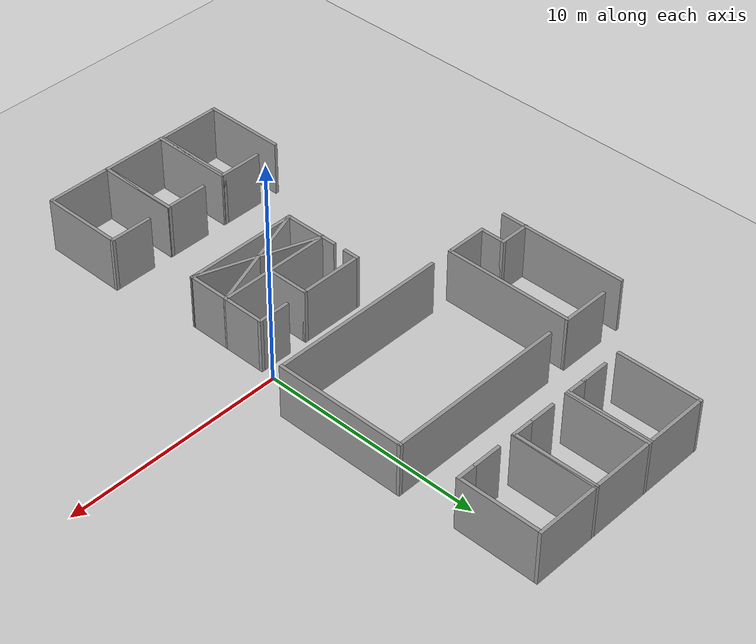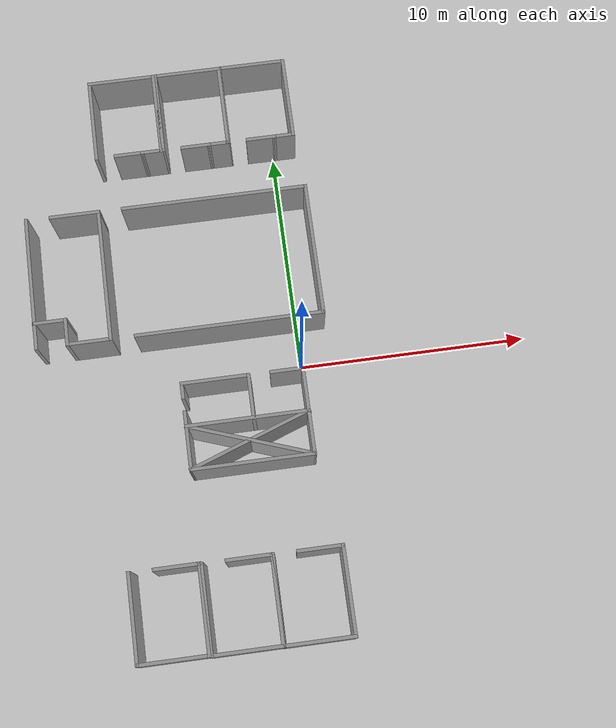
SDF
<sdf version="1.6">
 <world name="default">
  <model name="ground_plane">
   <static>1</static>
   <link name="link">
    <collision name="collision">
     <geometry><plane><normal>0 0 1</normal><size>100 100</size></plane></geometry>
     <surface><friction><ode><mu>100</mu><mu2>50</mu2></ode></friction></surface>
    </collision>
    <visual name="visual">
     <cast_shadows>0</cast_shadows>
     <geometry><plane><normal>0 0 1</normal><size>100 100</size></plane></geometry>
     <material>
      <script><uri>file://media/materials/scripts/gazebo.material</uri><name>Gazebo/Grey</name></script>
     </material>
    </visual>
   </link>
  </model>
  <model name="313-325_9">
   <link name="Wall_16">
    <pose>-1.44915 7.1e-05 0 0 0 -1.57088</pose>
    <visual name="Wall_16_Visual">
     <pose>0 0 1.25 0 -0 0</pose>
     <geometry><box><size>3.81 0.15 2.5</size></box></geometry>
     <material>
      <script><uri>file://media/materials/scripts/gazebo.material</uri><name>Gazebo/Grey</name></script>
      <ambient>1 1 1 1</ambient>
      <shader type="pixel"/>
     </material>
     <meta><layer>0</layer></meta>
    </visual>
    <collision name="Wall_16_Collision">
     <pose>0 0 1.25 0 -0 0</pose>
     <geometry><box><size>3.81 0.15 2.5</size></box></geometry>
     <surface>
      <friction>
       <ode><mu>1</mu><mu2>1</mu2><fdir1>0 0 0</fdir1><slip1>0</slip1><slip2>0</slip2></ode>
       <torsional>
        <coefficient>1</coefficient>
        <patch_radius>0</patch_radius>
        <surface_radius>0</surface_radius>
        <use_patch_radius>1</use_patch_radius>
        <ode><slip>0</slip></ode>
       </torsional>
      </friction>
      <bounce><restitution_coefficient>0</restitution_coefficient><threshold>1e+06</threshold></bounce>
      <contact>
       <collide_without_contact>0</collide_without_contact>
       <collide_without_contact_bitmask>1</collide_without_contact_bitmask>
       <collide_bitmask>1</collide_bitmask>
       <ode>
        <soft_cfm>0</soft_cfm>
        <soft_erp>0.2</soft_erp>
        <kp>1e+13</kp>
        <kd>1</kd>
        <max_vel>0.01</max_vel>
        <min_depth>0</min_depth>
       </ode>
       <bullet>
        <split_impulse>1</split_impulse>
        <split_impulse_penetration_threshold>-0.01</split_impulse_penetration_threshold>
        <soft_cfm>0</soft_cfm>
        <soft_erp>0.2</soft_erp>
        <kp>1e+13</kp>
        <kd>1</kd>
       </bullet>
      </contact>
     </surface>
    </collision>
   </link>
   <link name="Wall_18">
    <pose>1.449 -6.1e-05 0 0 -0 1.5708</pose>
    <visual name="Wall_18_Visual">
     <pose>0 0 1.25 0 -0 0</pose>
     <geometry><box><size>3.80974 0.15 2.5</size></box></geometry>
     <material>
      <script><uri>file://media/materials/scripts/gazebo.material</uri><name>Gazebo/Grey</name></script>
      <ambient>1 1 1 1</ambient>
      <shader type="pixel"/>
     </material>
     <meta><layer>0</layer></meta>
    </visual>
    <collision name="Wall_18_Collision">
     <pose>0 0 1.25 0 -0 0</pose>
     <geometry><box><size>3.80974 0.15 2.5</size></box></geometry>
     <surface>
      <friction>
       <ode><mu>1</mu><mu2>1</mu2><fdir1>0 0 0</fdir1><slip1>0</slip1><slip2>0</slip2></ode>
       <torsional>
        <coefficient>1</coefficient>
        <patch_radius>0</patch_radius>
        <surface_radius>0</surface_radius>
        <use_patch_radius>1</use_patch_radius>
        <ode><slip>0</slip></ode>
       </torsional>
      </friction>
      <bounce><restitution_coefficient>0</restitution_coefficient><threshold>1e+06</threshold></bounce>
      <contact>
       <collide_without_contact>0</collide_without_contact>
       <collide_without_contact_bitmask>1</collide_without_contact_bitmask>
       <collide_bitmask>1</collide_bitmask>
       <ode>
        <soft_cfm>0</soft_cfm>
        <soft_erp>0.2</soft_erp>
        <kp>1e+13</kp>
        <kd>1</kd>
        <max_vel>0.01</max_vel>
        <min_depth>0</min_depth>
       </ode>
       <bullet>
        <split_impulse>1</split_impulse>
        <split_impulse_penetration_threshold>-0.01</split_impulse_penetration_threshold>
        <soft_cfm>0</soft_cfm>
        <soft_erp>0.2</soft_erp>
        <kp>1e+13</kp>
        <kd>1</kd>
       </bullet>
      </contact>
     </surface>
    </collision>
   </link>
   <link name="Wall_19">
    <pose>2e-06 1.82994 0 0 -0 3.14159</pose>
    <visual name="Wall_19_Visual">
     <pose>0 0 1.25 0 -0 0</pose>
     <geometry><box><size>3.04862 0.15 2.5</size></box></geometry>
     <material>
      <script><uri>file://media/materials/scripts/gazebo.material</uri><name>Gazebo/Grey</name></script>
      <ambient>1 1 1 1</ambient>
      <shader type="pixel"/>
     </material>
     <meta><layer>0</layer></meta>
    </visual>
    <collision name="Wall_19_Collision">
     <pose>0 0 1.25 0 -0 0</pose>
     <geometry><box><size>3.04862 0.15 2.5</size></box></geometry>
     <surface>
      <friction>
       <ode><mu>1</mu><mu2>1</mu2><fdir1>0 0 0</fdir1><slip1>0</slip1><slip2>0</slip2></ode>
       <torsional>
        <coefficient>1</coefficient>
        <patch_radius>0</patch_radius>
        <surface_radius>0</surface_radius>
        <use_patch_radius>1</use_patch_radius>
        <ode><slip>0</slip></ode>
       </torsional>
      </friction>
      <bounce><restitution_coefficient>0</restitution_coefficient><threshold>1e+06</threshold></bounce>
      <contact>
       <collide_without_contact>0</collide_without_contact>
       <collide_without_contact_bitmask>1</collide_without_contact_bitmask>
       <collide_bitmask>1</collide_bitmask>
       <ode>
        <soft_cfm>0</soft_cfm>
        <soft_erp>0.2</soft_erp>
        <kp>1e+13</kp>
        <kd>1</kd>
        <max_vel>0.01</max_vel>
        <min_depth>0</min_depth>
       </ode>
       <bullet>
        <split_impulse>1</split_impulse>
        <split_impulse_penetration_threshold>-0.01</split_impulse_penetration_threshold>
        <soft_cfm>0</soft_cfm>
        <soft_erp>0.2</soft_erp>
        <kp>1e+13</kp>
        <kd>1</kd>
       </bullet>
      </contact>
     </surface>
    </collision>
   </link>
   <link name="Wall_22">
    <pose>-0.000153 -1.82993 0 0 0 -0.00022</pose>
    <visual name="Wall_22_Visual">
     <pose>0 0 1.25 0 -0 0</pose>
     <geometry><box><size>1.34831 0.15 2.5</size></box></geometry>
     <material>
      <script><uri>file://media/materials/scripts/gazebo.material</uri><name>Gazebo/Grey</name></script>
      <ambient>1 1 1 1</ambient>
      <shader type="pixel"/>
     </material>
     <meta><layer>0</layer></meta>
    </visual>
    <collision name="Wall_22_Collision">
     <pose>0 0 1.25 0 -0 0</pose>
     <geometry><box><size>1.34831 0.15 2.5</size></box></geometry>
     <surface>
      <friction>
       <ode><mu>1</mu><mu2>1</mu2><fdir1>0 0 0</fdir1><slip1>0</slip1><slip2>0</slip2></ode>
       <torsional>
        <coefficient>1</coefficient>
        <patch_radius>0</patch_radius>
        <surface_radius>0</surface_radius>
        <use_patch_radius>1</use_patch_radius>
        <ode><slip>0</slip></ode>
       </torsional>
      </friction>
      <bounce><restitution_coefficient>0</restitution_coefficient><threshold>1e+06</threshold></bounce>
      <contact>
       <collide_without_contact>0</collide_without_contact>
       <collide_without_contact_bitmask>1</collide_without_contact_bitmask>
       <collide_bitmask>1</collide_bitmask>
       <ode>
        <soft_cfm>0</soft_cfm>
        <soft_erp>0.2</soft_erp>
        <kp>1e+13</kp>
        <kd>1</kd>
        <max_vel>0.01</max_vel>
        <min_depth>0</min_depth>
       </ode>
       <bullet>
        <split_impulse>1</split_impulse>
        <split_impulse_penetration_threshold>-0.01</split_impulse_penetration_threshold>
        <soft_cfm>0</soft_cfm>
        <soft_erp>0.2</soft_erp>
        <kp>1e+13</kp>
        <kd>1</kd>
       </bullet>
      </contact>
     </surface>
    </collision>
   </link>
   <link name="Wall_23">
    <pose>1.024 -1.83006 0 0 -0 0</pose>
    <visual name="Wall_23_Visual">
     <pose>0 0 1.25 0 -0 0</pose>
     <geometry><box><size>1 0.15 2.5</size></box></geometry>
     <material>
      <script><uri>file://media/materials/scripts/gazebo.material</uri><name>Gazebo/Grey</name></script>
      <ambient>1 1 1 1</ambient>
      <shader type="pixel"/>
     </material>
     <meta><layer>0</layer></meta>
    </visual>
    <collision name="Wall_23_Collision">
     <pose>0 0 1.25 0 -0 0</pose>
     <geometry><box><size>1 0.15 2.5</size></box></geometry>
     <surface>
      <friction>
       <ode><mu>1</mu><mu2>1</mu2><fdir1>0 0 0</fdir1><slip1>0</slip1><slip2>0</slip2></ode>
       <torsional>
        <coefficient>1</coefficient>
        <patch_radius>0</patch_radius>
        <surface_radius>0</surface_radius>
        <use_patch_radius>1</use_patch_radius>
        <ode><slip>0</slip></ode>
       </torsional>
      </friction>
      <bounce><restitution_coefficient>0</restitution_coefficient><threshold>1e+06</threshold></bounce>
      <contact>
       <collide_without_contact>0</collide_without_contact>
       <collide_without_contact_bitmask>1</collide_without_contact_bitmask>
       <collide_bitmask>1</collide_bitmask>
       <ode>
        <soft_cfm>0</soft_cfm>
        <soft_erp>0.2</soft_erp>
        <kp>1e+13</kp>
        <kd>1</kd>
        <max_vel>0.01</max_vel>
        <min_depth>0</min_depth>
       </ode>
       <bullet>
        <split_impulse>1</split_impulse>
        <split_impulse_penetration_threshold>-0.01</split_impulse_penetration_threshold>
        <soft_cfm>0</soft_cfm>
        <soft_erp>0.2</soft_erp>
        <kp>1e+13</kp>
        <kd>1</kd>
       </bullet>
      </contact>
     </surface>
    </collision>
   </link>
   <static>1</static>
   <pose>-0.478221 11.9573 0 0 -0 0</pose>
  </model>
  <model name="313-325_10">
   <link name="Wall_16">
    <pose>-1.44915 7.1e-05 0 0 0 -1.57088</pose>
    <visual name="Wall_16_Visual">
     <pose>0 0 1.25 0 -0 0</pose>
     <geometry><box><size>3.81 0.15 2.5</size></box></geometry>
     <material>
      <script><uri>file://media/materials/scripts/gazebo.material</uri><name>Gazebo/Grey</name></script>
      <ambient>1 1 1 1</ambient>
      <shader type="pixel"/>
     </material>
     <meta><layer>0</layer></meta>
    </visual>
    <collision name="Wall_16_Collision">
     <pose>0 0 1.25 0 -0 0</pose>
     <geometry><box><size>3.81 0.15 2.5</size></box></geometry>
     <surface>
      <friction>
       <ode><mu>1</mu><mu2>1</mu2><fdir1>0 0 0</fdir1><slip1>0</slip1><slip2>0</slip2></ode>
       <torsional>
        <coefficient>1</coefficient>
        <patch_radius>0</patch_radius>
        <surface_radius>0</surface_radius>
        <use_patch_radius>1</use_patch_radius>
        <ode><slip>0</slip></ode>
       </torsional>
      </friction>
      <bounce><restitution_coefficient>0</restitution_coefficient><threshold>1e+06</threshold></bounce>
      <contact>
       <collide_without_contact>0</collide_without_contact>
       <collide_without_contact_bitmask>1</collide_without_contact_bitmask>
       <collide_bitmask>1</collide_bitmask>
       <ode>
        <soft_cfm>0</soft_cfm>
        <soft_erp>0.2</soft_erp>
        <kp>1e+13</kp>
        <kd>1</kd>
        <max_vel>0.01</max_vel>
        <min_depth>0</min_depth>
       </ode>
       <bullet>
        <split_impulse>1</split_impulse>
        <split_impulse_penetration_threshold>-0.01</split_impulse_penetration_threshold>
        <soft_cfm>0</soft_cfm>
        <soft_erp>0.2</soft_erp>
        <kp>1e+13</kp>
        <kd>1</kd>
       </bullet>
      </contact>
     </surface>
    </collision>
   </link>
   <link name="Wall_18">
    <pose>1.449 -6.1e-05 0 0 -0 1.5708</pose>
    <visual name="Wall_18_Visual">
     <pose>0 0 1.25 0 -0 0</pose>
     <geometry><box><size>3.80974 0.15 2.5</size></box></geometry>
     <material>
      <script><uri>file://media/materials/scripts/gazebo.material</uri><name>Gazebo/Grey</name></script>
      <ambient>1 1 1 1</ambient>
      <shader type="pixel"/>
     </material>
     <meta><layer>0</layer></meta>
    </visual>
    <collision name="Wall_18_Collision">
     <pose>0 0 1.25 0 -0 0</pose>
     <geometry><box><size>3.80974 0.15 2.5</size></box></geometry>
     <surface>
      <friction>
       <ode><mu>1</mu><mu2>1</mu2><fdir1>0 0 0</fdir1><slip1>0</slip1><slip2>0</slip2></ode>
       <torsional>
        <coefficient>1</coefficient>
        <patch_radius>0</patch_radius>
        <surface_radius>0</surface_radius>
        <use_patch_radius>1</use_patch_radius>
        <ode><slip>0</slip></ode>
       </torsional>
      </friction>
      <bounce><restitution_coefficient>0</restitution_coefficient><threshold>1e+06</threshold></bounce>
      <contact>
       <collide_without_contact>0</collide_without_contact>
       <collide_without_contact_bitmask>1</collide_without_contact_bitmask>
       <collide_bitmask>1</collide_bitmask>
       <ode>
        <soft_cfm>0</soft_cfm>
        <soft_erp>0.2</soft_erp>
        <kp>1e+13</kp>
        <kd>1</kd>
        <max_vel>0.01</max_vel>
        <min_depth>0</min_depth>
       </ode>
       <bullet>
        <split_impulse>1</split_impulse>
        <split_impulse_penetration_threshold>-0.01</split_impulse_penetration_threshold>
        <soft_cfm>0</soft_cfm>
        <soft_erp>0.2</soft_erp>
        <kp>1e+13</kp>
        <kd>1</kd>
       </bullet>
      </contact>
     </surface>
    </collision>
   </link>
   <link name="Wall_19">
    <pose>2e-06 1.82994 0 0 -0 3.14159</pose>
    <visual name="Wall_19_Visual">
     <pose>0 0 1.25 0 -0 0</pose>
     <geometry><box><size>3.04862 0.15 2.5</size></box></geometry>
     <material>
      <script><uri>file://media/materials/scripts/gazebo.material</uri><name>Gazebo/Grey</name></script>
      <ambient>1 1 1 1</ambient>
      <shader type="pixel"/>
     </material>
     <meta><layer>0</layer></meta>
    </visual>
    <collision name="Wall_19_Collision">
     <pose>0 0 1.25 0 -0 0</pose>
     <geometry><box><size>3.04862 0.15 2.5</size></box></geometry>
     <surface>
      <friction>
       <ode><mu>1</mu><mu2>1</mu2><fdir1>0 0 0</fdir1><slip1>0</slip1><slip2>0</slip2></ode>
       <torsional>
        <coefficient>1</coefficient>
        <patch_radius>0</patch_radius>
        <surface_radius>0</surface_radius>
        <use_patch_radius>1</use_patch_radius>
        <ode><slip>0</slip></ode>
       </torsional>
      </friction>
      <bounce><restitution_coefficient>0</restitution_coefficient><threshold>1e+06</threshold></bounce>
      <contact>
       <collide_without_contact>0</collide_without_contact>
       <collide_without_contact_bitmask>1</collide_without_contact_bitmask>
       <collide_bitmask>1</collide_bitmask>
       <ode>
        <soft_cfm>0</soft_cfm>
        <soft_erp>0.2</soft_erp>
        <kp>1e+13</kp>
        <kd>1</kd>
        <max_vel>0.01</max_vel>
        <min_depth>0</min_depth>
       </ode>
       <bullet>
        <split_impulse>1</split_impulse>
        <split_impulse_penetration_threshold>-0.01</split_impulse_penetration_threshold>
        <soft_cfm>0</soft_cfm>
        <soft_erp>0.2</soft_erp>
        <kp>1e+13</kp>
        <kd>1</kd>
       </bullet>
      </contact>
     </surface>
    </collision>
   </link>
   <link name="Wall_22">
    <pose>-0.000153 -1.82993 0 0 0 -0.00022</pose>
    <visual name="Wall_22_Visual">
     <pose>0 0 1.25 0 -0 0</pose>
     <geometry><box><size>1.34831 0.15 2.5</size></box></geometry>
     <material>
      <script><uri>file://media/materials/scripts/gazebo.material</uri><name>Gazebo/Grey</name></script>
      <ambient>1 1 1 1</ambient>
      <shader type="pixel"/>
     </material>
     <meta><layer>0</layer></meta>
    </visual>
    <collision name="Wall_22_Collision">
     <pose>0 0 1.25 0 -0 0</pose>
     <geometry><box><size>1.34831 0.15 2.5</size></box></geometry>
     <surface>
      <friction>
       <ode><mu>1</mu><mu2>1</mu2><fdir1>0 0 0</fdir1><slip1>0</slip1><slip2>0</slip2></ode>
       <torsional>
        <coefficient>1</coefficient>
        <patch_radius>0</patch_radius>
        <surface_radius>0</surface_radius>
        <use_patch_radius>1</use_patch_radius>
        <ode><slip>0</slip></ode>
       </torsional>
      </friction>
      <bounce><restitution_coefficient>0</restitution_coefficient><threshold>1e+06</threshold></bounce>
      <contact>
       <collide_without_contact>0</collide_without_contact>
       <collide_without_contact_bitmask>1</collide_without_contact_bitmask>
       <collide_bitmask>1</collide_bitmask>
       <ode>
        <soft_cfm>0</soft_cfm>
        <soft_erp>0.2</soft_erp>
        <kp>1e+13</kp>
        <kd>1</kd>
        <max_vel>0.01</max_vel>
        <min_depth>0</min_depth>
       </ode>
       <bullet>
        <split_impulse>1</split_impulse>
        <split_impulse_penetration_threshold>-0.01</split_impulse_penetration_threshold>
        <soft_cfm>0</soft_cfm>
        <soft_erp>0.2</soft_erp>
        <kp>1e+13</kp>
        <kd>1</kd>
       </bullet>
      </contact>
     </surface>
    </collision>
   </link>
   <link name="Wall_23">
    <pose>1.024 -1.83006 0 0 -0 0</pose>
    <visual name="Wall_23_Visual">
     <pose>0 0 1.25 0 -0 0</pose>
     <geometry><box><size>1 0.15 2.5</size></box></geometry>
     <material>
      <script><uri>file://media/materials/scripts/gazebo.material</uri><name>Gazebo/Grey</name></script>
      <ambient>1 1 1 1</ambient>
      <shader type="pixel"/>
     </material>
     <meta><layer>0</layer></meta>
    </visual>
    <collision name="Wall_23_Collision">
     <pose>0 0 1.25 0 -0 0</pose>
     <geometry><box><size>1 0.15 2.5</size></box></geometry>
     <surface>
      <friction>
       <ode><mu>1</mu><mu2>1</mu2><fdir1>0 0 0</fdir1><slip1>0</slip1><slip2>0</slip2></ode>
       <torsional>
        <coefficient>1</coefficient>
        <patch_radius>0</patch_radius>
        <surface_radius>0</surface_radius>
        <use_patch_radius>1</use_patch_radius>
        <ode><slip>0</slip></ode>
       </torsional>
      </friction>
      <bounce><restitution_coefficient>0</restitution_coefficient><threshold>1e+06</threshold></bounce>
      <contact>
       <collide_without_contact>0</collide_without_contact>
       <collide_without_contact_bitmask>1</collide_without_contact_bitmask>
       <collide_bitmask>1</collide_bitmask>
       <ode>
        <soft_cfm>0</soft_cfm>
        <soft_erp>0.2</soft_erp>
        <kp>1e+13</kp>
        <kd>1</kd>
        <max_vel>0.01</max_vel>
        <min_depth>0</min_depth>
       </ode>
       <bullet>
        <split_impulse>1</split_impulse>
        <split_impulse_penetration_threshold>-0.01</split_impulse_penetration_threshold>
        <soft_cfm>0</soft_cfm>
        <soft_erp>0.2</soft_erp>
        <kp>1e+13</kp>
        <kd>1</kd>
       </bullet>
      </contact>
     </surface>
    </collision>
   </link>
   <static>1</static>
   <pose>-3.42135 11.9532 0 0 -0 0</pose>
  </model>
  <model name="313-325_11">
   <link name="Wall_16">
    <pose>-1.44915 7.1e-05 0 0 0 -1.57088</pose>
    <visual name="Wall_16_Visual">
     <pose>0 0 1.25 0 -0 0</pose>
     <geometry><box><size>3.81 0.15 2.5</size></box></geometry>
     <material>
      <script><uri>file://media/materials/scripts/gazebo.material</uri><name>Gazebo/Grey</name></script>
      <ambient>1 1 1 1</ambient>
      <shader type="pixel"/>
     </material>
     <meta><layer>0</layer></meta>
    </visual>
    <collision name="Wall_16_Collision">
     <pose>0 0 1.25 0 -0 0</pose>
     <geometry><box><size>3.81 0.15 2.5</size></box></geometry>
     <surface>
      <friction>
       <ode><mu>1</mu><mu2>1</mu2><fdir1>0 0 0</fdir1><slip1>0</slip1><slip2>0</slip2></ode>
       <torsional>
        <coefficient>1</coefficient>
        <patch_radius>0</patch_radius>
        <surface_radius>0</surface_radius>
        <use_patch_radius>1</use_patch_radius>
        <ode><slip>0</slip></ode>
       </torsional>
      </friction>
      <bounce><restitution_coefficient>0</restitution_coefficient><threshold>1e+06</threshold></bounce>
      <contact>
       <collide_without_contact>0</collide_without_contact>
       <collide_without_contact_bitmask>1</collide_without_contact_bitmask>
       <collide_bitmask>1</collide_bitmask>
       <ode>
        <soft_cfm>0</soft_cfm>
        <soft_erp>0.2</soft_erp>
        <kp>1e+13</kp>
        <kd>1</kd>
        <max_vel>0.01</max_vel>
        <min_depth>0</min_depth>
       </ode>
       <bullet>
        <split_impulse>1</split_impulse>
        <split_impulse_penetration_threshold>-0.01</split_impulse_penetration_threshold>
        <soft_cfm>0</soft_cfm>
        <soft_erp>0.2</soft_erp>
        <kp>1e+13</kp>
        <kd>1</kd>
       </bullet>
      </contact>
     </surface>
    </collision>
   </link>
   <link name="Wall_18">
    <pose>1.449 -6.1e-05 0 0 -0 1.5708</pose>
    <visual name="Wall_18_Visual">
     <pose>0 0 1.25 0 -0 0</pose>
     <geometry><box><size>3.80974 0.15 2.5</size></box></geometry>
     <material>
      <script><uri>file://media/materials/scripts/gazebo.material</uri><name>Gazebo/Grey</name></script>
      <ambient>1 1 1 1</ambient>
      <shader type="pixel"/>
     </material>
     <meta><layer>0</layer></meta>
    </visual>
    <collision name="Wall_18_Collision">
     <pose>0 0 1.25 0 -0 0</pose>
     <geometry><box><size>3.80974 0.15 2.5</size></box></geometry>
     <surface>
      <friction>
       <ode><mu>1</mu><mu2>1</mu2><fdir1>0 0 0</fdir1><slip1>0</slip1><slip2>0</slip2></ode>
       <torsional>
        <coefficient>1</coefficient>
        <patch_radius>0</patch_radius>
        <surface_radius>0</surface_radius>
        <use_patch_radius>1</use_patch_radius>
        <ode><slip>0</slip></ode>
       </torsional>
      </friction>
      <bounce><restitution_coefficient>0</restitution_coefficient><threshold>1e+06</threshold></bounce>
      <contact>
       <collide_without_contact>0</collide_without_contact>
       <collide_without_contact_bitmask>1</collide_without_contact_bitmask>
       <collide_bitmask>1</collide_bitmask>
       <ode>
        <soft_cfm>0</soft_cfm>
        <soft_erp>0.2</soft_erp>
        <kp>1e+13</kp>
        <kd>1</kd>
        <max_vel>0.01</max_vel>
        <min_depth>0</min_depth>
       </ode>
       <bullet>
        <split_impulse>1</split_impulse>
        <split_impulse_penetration_threshold>-0.01</split_impulse_penetration_threshold>
        <soft_cfm>0</soft_cfm>
        <soft_erp>0.2</soft_erp>
        <kp>1e+13</kp>
        <kd>1</kd>
       </bullet>
      </contact>
     </surface>
    </collision>
   </link>
   <link name="Wall_19">
    <pose>2e-06 1.82994 0 0 -0 3.14159</pose>
    <visual name="Wall_19_Visual">
     <pose>0 0 1.25 0 -0 0</pose>
     <geometry><box><size>3.04862 0.15 2.5</size></box></geometry>
     <material>
      <script><uri>file://media/materials/scripts/gazebo.material</uri><name>Gazebo/Grey</name></script>
      <ambient>1 1 1 1</ambient>
      <shader type="pixel"/>
     </material>
     <meta><layer>0</layer></meta>
    </visual>
    <collision name="Wall_19_Collision">
     <pose>0 0 1.25 0 -0 0</pose>
     <geometry><box><size>3.04862 0.15 2.5</size></box></geometry>
     <surface>
      <friction>
       <ode><mu>1</mu><mu2>1</mu2><fdir1>0 0 0</fdir1><slip1>0</slip1><slip2>0</slip2></ode>
       <torsional>
        <coefficient>1</coefficient>
        <patch_radius>0</patch_radius>
        <surface_radius>0</surface_radius>
        <use_patch_radius>1</use_patch_radius>
        <ode><slip>0</slip></ode>
       </torsional>
      </friction>
      <bounce><restitution_coefficient>0</restitution_coefficient><threshold>1e+06</threshold></bounce>
      <contact>
       <collide_without_contact>0</collide_without_contact>
       <collide_without_contact_bitmask>1</collide_without_contact_bitmask>
       <collide_bitmask>1</collide_bitmask>
       <ode>
        <soft_cfm>0</soft_cfm>
        <soft_erp>0.2</soft_erp>
        <kp>1e+13</kp>
        <kd>1</kd>
        <max_vel>0.01</max_vel>
        <min_depth>0</min_depth>
       </ode>
       <bullet>
        <split_impulse>1</split_impulse>
        <split_impulse_penetration_threshold>-0.01</split_impulse_penetration_threshold>
        <soft_cfm>0</soft_cfm>
        <soft_erp>0.2</soft_erp>
        <kp>1e+13</kp>
        <kd>1</kd>
       </bullet>
      </contact>
     </surface>
    </collision>
   </link>
   <link name="Wall_22">
    <pose>-0.000153 -1.82993 0 0 0 -0.00022</pose>
    <visual name="Wall_22_Visual">
     <pose>0 0 1.25 0 -0 0</pose>
     <geometry><box><size>1.34831 0.15 2.5</size></box></geometry>
     <material>
      <script><uri>file://media/materials/scripts/gazebo.material</uri><name>Gazebo/Grey</name></script>
      <ambient>1 1 1 1</ambient>
      <shader type="pixel"/>
     </material>
     <meta><layer>0</layer></meta>
    </visual>
    <collision name="Wall_22_Collision">
     <pose>0 0 1.25 0 -0 0</pose>
     <geometry><box><size>1.34831 0.15 2.5</size></box></geometry>
     <surface>
      <friction>
       <ode><mu>1</mu><mu2>1</mu2><fdir1>0 0 0</fdir1><slip1>0</slip1><slip2>0</slip2></ode>
       <torsional>
        <coefficient>1</coefficient>
        <patch_radius>0</patch_radius>
        <surface_radius>0</surface_radius>
        <use_patch_radius>1</use_patch_radius>
        <ode><slip>0</slip></ode>
       </torsional>
      </friction>
      <bounce><restitution_coefficient>0</restitution_coefficient><threshold>1e+06</threshold></bounce>
      <contact>
       <collide_without_contact>0</collide_without_contact>
       <collide_without_contact_bitmask>1</collide_without_contact_bitmask>
       <collide_bitmask>1</collide_bitmask>
       <ode>
        <soft_cfm>0</soft_cfm>
        <soft_erp>0.2</soft_erp>
        <kp>1e+13</kp>
        <kd>1</kd>
        <max_vel>0.01</max_vel>
        <min_depth>0</min_depth>
       </ode>
       <bullet>
        <split_impulse>1</split_impulse>
        <split_impulse_penetration_threshold>-0.01</split_impulse_penetration_threshold>
        <soft_cfm>0</soft_cfm>
        <soft_erp>0.2</soft_erp>
        <kp>1e+13</kp>
        <kd>1</kd>
       </bullet>
      </contact>
     </surface>
    </collision>
   </link>
   <link name="Wall_23">
    <pose>1.024 -1.83006 0 0 -0 0</pose>
    <visual name="Wall_23_Visual">
     <pose>0 0 1.25 0 -0 0</pose>
     <geometry><box><size>1 0.15 2.5</size></box></geometry>
     <material>
      <script><uri>file://media/materials/scripts/gazebo.material</uri><name>Gazebo/Grey</name></script>
      <ambient>1 1 1 1</ambient>
      <shader type="pixel"/>
     </material>
     <meta><layer>0</layer></meta>
    </visual>
    <collision name="Wall_23_Collision">
     <pose>0 0 1.25 0 -0 0</pose>
     <geometry><box><size>1 0.15 2.5</size></box></geometry>
     <surface>
      <friction>
       <ode><mu>1</mu><mu2>1</mu2><fdir1>0 0 0</fdir1><slip1>0</slip1><slip2>0</slip2></ode>
       <torsional>
        <coefficient>1</coefficient>
        <patch_radius>0</patch_radius>
        <surface_radius>0</surface_radius>
        <use_patch_radius>1</use_patch_radius>
        <ode><slip>0</slip></ode>
       </torsional>
      </friction>
      <bounce><restitution_coefficient>0</restitution_coefficient><threshold>1e+06</threshold></bounce>
      <contact>
       <collide_without_contact>0</collide_without_contact>
       <collide_without_contact_bitmask>1</collide_without_contact_bitmask>
       <collide_bitmask>1</collide_bitmask>
       <ode>
        <soft_cfm>0</soft_cfm>
        <soft_erp>0.2</soft_erp>
        <kp>1e+13</kp>
        <kd>1</kd>
        <max_vel>0.01</max_vel>
        <min_depth>0</min_depth>
       </ode>
       <bullet>
        <split_impulse>1</split_impulse>
        <split_impulse_penetration_threshold>-0.01</split_impulse_penetration_threshold>
        <soft_cfm>0</soft_cfm>
        <soft_erp>0.2</soft_erp>
        <kp>1e+13</kp>
        <kd>1</kd>
       </bullet>
      </contact>
     </surface>
    </collision>
   </link>
   <static>1</static>
   <pose>-6.41185 11.9493 0 0 -0 0</pose>
  </model>
  <model name="406">
   <pose>-5.01758 4.65296 0 0 -0 0</pose>
   <link name="Wall_40">
    <collision name="Wall_40_Collision">
     <geometry><box><size>6 0.15 2.5</size></box></geometry>
     <pose>0 0 1.25 0 -0 0</pose>
    </collision>
    <visual name="Wall_40_Visual">
     <pose>0 0 1.25 0 -0 0</pose>
     <geometry><box><size>6 0.15 2.5</size></box></geometry>
     <material>
      <script><uri>file://media/materials/scripts/gazebo.material</uri><name>Gazebo/Grey</name></script>
      <ambient>1 1 1 1</ambient>
     </material>
     <meta><layer>0</layer></meta>
    </visual>
    <pose>6.1925 -8.1e-05 0 0 -0 1.5708</pose>
   </link>
   <link name="Wall_42">
    <collision name="Wall_42_Collision">
     <geometry><box><size>6 0.15 2.5</size></box></geometry>
     <pose>0 0 1.25 0 -0 0</pose>
    </collision>
    <visual name="Wall_42_Visual">
     <pose>0 0 1.25 0 -0 0</pose>
     <geometry><box><size>6 0.15 2.5</size></box></geometry>
     <material>
      <script><uri>file://media/materials/scripts/gazebo.material</uri><name>Gazebo/Grey</name></script>
      <ambient>1 1 1 1</ambient>
     </material>
     <meta><layer>0</layer></meta>
    </visual>
    <pose>-2.99225 0 0 0 -0 -1.57088</pose>
   </link>
   <link name="Wall_44">
    <collision name="Wall_44_Collision">
     <geometry><box><size>8.25 0.15 2.5</size></box></geometry>
     <pose>0 0 1.25 0 -0 0</pose>
    </collision>
    <visual name="Wall_44_Visual">
     <pose>0 0 1.25 0 -0 0</pose>
     <geometry><box><size>8.25 0.15 2.5</size></box></geometry>
     <material>
      <script><uri>file://media/materials/scripts/gazebo.material</uri><name>Gazebo/Grey</name></script>
      <ambient>1 1 1 1</ambient>
     </material>
     <meta><layer>0</layer></meta>
    </visual>
    <pose>2.1425 2.92492 0 0 -0 3.14159</pose>
   </link>
   <link name="Wall_46">
    <collision name="Wall_46_Collision">
     <geometry><box><size>8.25 0.15 2.5</size></box></geometry>
     <pose>0 0 1.25 0 -0 0</pose>
    </collision>
    <visual name="Wall_46_Visual">
     <pose>0 0 1.25 0 -0 0</pose>
     <geometry><box><size>8.25 0.15 2.5</size></box></geometry>
     <material>
      <script><uri>file://media/materials/scripts/gazebo.material</uri><name>Gazebo/Grey</name></script>
      <ambient>1 1 1 1</ambient>
     </material>
     <meta><layer>0</layer></meta>
    </visual>
    <pose>2.1425 -2.92508 0 0 -0 3.14159</pose>
   </link>
   <link name="Wall_55">
    <collision name="Wall_55_Collision">
     <geometry><box><size>6 0.15 2.5</size></box></geometry>
     <pose>0 0 1.25 0 -0 0</pose>
    </collision>
    <visual name="Wall_55_Visual">
     <pose>0 0 1.25 0 -0 0</pose>
     <geometry><box><size>6 0.15 2.5</size></box></geometry>
     <material>
      <script><uri>file://media/materials/scripts/gazebo.material</uri><name>Gazebo/Grey</name></script>
      <ambient>1 1 1 1</ambient>
     </material>
     <meta><layer>0</layer></meta>
    </visual>
    <pose>-6.176 8.1e-05 0 0 -0 -1.5708</pose>
   </link>
   <link name="Wall_57">
    <collision name="Wall_57_Collision">
     <geometry><box><size>2.25 0.15 2.5</size></box></geometry>
     <pose>0 0 1.25 0 -0 0</pose>
    </collision>
    <visual name="Wall_57_Visual">
     <pose>0 0 1.25 0 -0 0</pose>
     <geometry><box><size>2.25 0.15 2.5</size></box></geometry>
     <material>
      <script><uri>file://media/materials/scripts/gazebo.material</uri><name>Gazebo/Grey</name></script>
      <ambient>1 1 1 1</ambient>
     </material>
     <meta><layer>0</layer></meta>
    </visual>
    <pose>-4.042 2.92508 0 0 -0 3.14159</pose>
   </link>
   <link name="Wall_63">
    <collision name="Wall_63_Collision">
     <geometry><box><size>2 0.15 2.5</size></box></geometry>
     <pose>0 0 1.25 0 -0 0</pose>
    </collision>
    <visual name="Wall_63_Visual">
     <pose>0 0 1.25 0 -0 0</pose>
     <geometry><box><size>2 0.15 2.5</size></box></geometry>
     <material>
      <script><uri>file://media/materials/scripts/gazebo.material</uri><name>Gazebo/Grey</name></script>
      <ambient>1 1 1 1</ambient>
     </material>
     <meta><layer>0</layer></meta>
    </visual>
    <pose>-3.9175 -2.92508 0 0 -0 3.14159</pose>
   </link>
   <link name="Wall_64">
    <collision name="Wall_64_Collision">
     <geometry><box><size>1.25 0.15 2.5</size></box></geometry>
     <pose>0 0 1.25 0 -0 0</pose>
    </collision>
    <visual name="Wall_64_Visual">
     <pose>0 0 1.25 0 -0 0</pose>
     <geometry><box><size>1.25 0.15 2.5</size></box></geometry>
     <material>
      <script><uri>file://media/materials/scripts/gazebo.material</uri><name>Gazebo/Grey</name></script>
      <ambient>1 1 1 1</ambient>
     </material>
     <meta><layer>0</layer></meta>
    </visual>
    <pose>-4.8425 -2.37508 0 0 -0 1.5708</pose>
   </link>
   <link name="Wall_65">
    <collision name="Wall_65_Collision">
     <geometry><box><size>1.5 0.15 2.5</size></box></geometry>
     <pose>0 0 1.25 0 -0 0</pose>
    </collision>
    <visual name="Wall_65_Visual">
     <pose>0 0 1.25 0 -0 0</pose>
     <geometry><box><size>1.5 0.15 2.5</size></box></geometry>
     <material>
      <script><uri>file://media/materials/scripts/gazebo.material</uri><name>Gazebo/Grey</name></script>
      <ambient>1 1 1 1</ambient>
     </material>
     <meta><layer>0</layer></meta>
    </visual>
    <pose>-5.5175 -1.82508 0 0 -0 3.14159</pose>
   </link>
   <static>1</static>
  </model>
  <model name="407">
   <pose>-2.62263 -2.48899 0 0 -0 0</pose>
   <link name="Wall_140">
    <collision name="Wall_140_Collision">
     <geometry><box><size>5.334 0.15 2.5</size></box></geometry>
     <pose>0 0 1.25 0 -0 0</pose>
    </collision>
    <visual name="Wall_140_Visual">
     <pose>0 0 1.25 0 -0 0</pose>
     <geometry><box><size>5.334 0.15 2.5</size></box></geometry>
     <material>
      <script><uri>file://media/materials/scripts/gazebo.material</uri><name>Gazebo/Grey</name></script>
      <ambient>1 1 1 1</ambient>
     </material>
     <meta><layer>0</layer></meta>
    </visual>
    <pose>0 0.010423 0 0 -0 3.14159</pose>
   </link>
   <link name="Wall_141">
    <collision name="Wall_141_Collision">
     <geometry><box><size>2 0.15 2.5</size></box></geometry>
     <pose>0 0 1.25 0 -0 0</pose>
    </collision>
    <visual name="Wall_141_Visual">
     <pose>0 0 1.25 0 -0 0</pose>
     <geometry><box><size>2 0.15 2.5</size></box></geometry>
     <material>
      <script><uri>file://media/materials/scripts/gazebo.material</uri><name>Gazebo/Grey</name></script>
      <ambient>1 1 1 1</ambient>
     </material>
     <meta><layer>0</layer></meta>
    </visual>
    <pose>-2.592 -0.914577 0 0 -0 -1.5708</pose>
   </link>
   <link name="Wall_142">
    <collision name="Wall_142_Collision">
     <geometry><box><size>5.334 0.15 2.5</size></box></geometry>
     <pose>0 0 1.25 0 -0 0</pose>
    </collision>
    <visual name="Wall_142_Visual">
     <pose>0 0 1.25 0 -0 0</pose>
     <geometry><box><size>5.334 0.15 2.5</size></box></geometry>
     <material>
      <script><uri>file://media/materials/scripts/gazebo.material</uri><name>Gazebo/Grey</name></script>
      <ambient>1 1 1 1</ambient>
     </material>
     <meta><layer>0</layer></meta>
    </visual>
    <pose>0 -1.83958 0 0 -0 0</pose>
   </link>
   <link name="Wall_143">
    <collision name="Wall_143_Collision">
     <geometry><box><size>2 0.15 2.5</size></box></geometry>
     <pose>0 0 1.25 0 -0 0</pose>
    </collision>
    <visual name="Wall_143_Visual">
     <pose>0 0 1.25 0 -0 0</pose>
     <geometry><box><size>2 0.15 2.5</size></box></geometry>
     <material>
      <script><uri>file://media/materials/scripts/gazebo.material</uri><name>Gazebo/Grey</name></script>
      <ambient>1 1 1 1</ambient>
     </material>
     <meta><layer>0</layer></meta>
    </visual>
    <pose>2.592 -0.914577 0 0 -0 1.5708</pose>
   </link>
   <link name="Wall_146">
    <collision name="Wall_146_Collision">
     <geometry><box><size>3 0.15 2.5</size></box></geometry>
     <pose>0 0 1.25 0 -0 0</pose>
    </collision>
    <visual name="Wall_146_Visual">
     <pose>0 0 1.25 0 -0 0</pose>
     <geometry><box><size>3 0.15 2.5</size></box></geometry>
     <material>
      <script><uri>file://media/materials/scripts/gazebo.material</uri><name>Gazebo/Grey</name></script>
      <ambient>1 1 1 1</ambient>
     </material>
     <meta><layer>0</layer></meta>
    </visual>
    <pose>-1.167 1.86042 0 0 -0 0</pose>
   </link>
   <link name="Wall_147">
    <collision name="Wall_147_Collision">
     <geometry><box><size>2 0.15 2.5</size></box></geometry>
     <pose>0 0 1.25 0 -0 0</pose>
    </collision>
    <visual name="Wall_147_Visual">
     <pose>0 0 1.25 0 -0 0</pose>
     <geometry><box><size>2 0.15 2.5</size></box></geometry>
     <material>
      <script><uri>file://media/materials/scripts/gazebo.material</uri><name>Gazebo/Grey</name></script>
      <ambient>1 1 1 1</ambient>
     </material>
     <meta><layer>0</layer></meta>
    </visual>
    <pose>0.258 0.935422 0 0 -0 -1.5708</pose>
   </link>
   <link name="Wall_149">
    <collision name="Wall_149_Collision">
     <geometry><box><size>0.75 0.15 2.5</size></box></geometry>
     <pose>0 0 1.25 0 -0 0</pose>
    </collision>
    <visual name="Wall_149_Visual">
     <pose>0 0 1.25 0 -0 0</pose>
     <geometry><box><size>0.75 0.15 2.5</size></box></geometry>
     <material>
      <script><uri>file://media/materials/scripts/gazebo.material</uri><name>Gazebo/Grey</name></script>
      <ambient>1 1 1 1</ambient>
     </material>
     <meta><layer>0</layer></meta>
    </visual>
    <pose>-2.592 0.310422 0 0 -0 1.5708</pose>
   </link>
   <link name="Wall_151">
    <collision name="Wall_151_Collision">
     <geometry><box><size>0.75 0.15 2.5</size></box></geometry>
     <pose>0 0 1.25 0 -0 0</pose>
    </collision>
    <visual name="Wall_151_Visual">
     <pose>0 0 1.25 0 -0 0</pose>
     <geometry><box><size>0.75 0.15 2.5</size></box></geometry>
     <material>
      <script><uri>file://media/materials/scripts/gazebo.material</uri><name>Gazebo/Grey</name></script>
      <ambient>1 1 1 1</ambient>
     </material>
     <meta><layer>0</layer></meta>
    </visual>
    <pose>-2.592 1.56042 0 0 -0 1.5708</pose>
   </link>
   <link name="Wall_153">
    <collision name="Wall_153_Collision">
     <geometry><box><size>2 0.15 2.5</size></box></geometry>
     <pose>0 0 1.25 0 -0 0</pose>
    </collision>
    <visual name="Wall_153_Visual">
     <pose>0 0 1.25 0 -0 0</pose>
     <geometry><box><size>2 0.15 2.5</size></box></geometry>
     <material>
      <script><uri>file://media/materials/scripts/gazebo.material</uri><name>Gazebo/Grey</name></script>
      <ambient>1 1 1 1</ambient>
     </material>
     <meta><layer>0</layer></meta>
    </visual>
    <pose>2.592 0.935422 0 0 -0 1.5708</pose>
   </link>
   <link name="Wall_154">
    <collision name="Wall_154_Collision">
     <geometry><box><size>1.5 0.15 2.5</size></box></geometry>
     <pose>0 0 1.25 0 -0 0</pose>
    </collision>
    <visual name="Wall_154_Visual">
     <pose>0 0 1.25 0 -0 0</pose>
     <geometry><box><size>1.5 0.15 2.5</size></box></geometry>
     <material>
      <script><uri>file://media/materials/scripts/gazebo.material</uri><name>Gazebo/Grey</name></script>
      <ambient>1 1 1 1</ambient>
     </material>
     <meta><layer>0</layer></meta>
    </visual>
    <pose>1.917 1.86042 0 0 -0 3.14159</pose>
   </link>
   <link name="Wall_156">
    <collision name="Wall_156_Collision">
     <geometry><box><size>5.65421 0.15 2.5</size></box></geometry>
     <pose>0 0 1.25 0 -0 0</pose>
    </collision>
    <visual name="Wall_156_Visual">
     <pose>0 0 1.25 0 -0 0</pose>
     <geometry><box><size>5.65421 0.15 2.5</size></box></geometry>
     <material>
      <script><uri>file://media/materials/scripts/gazebo.material</uri><name>Gazebo/Grey</name></script>
      <ambient>1 1 1 1</ambient>
     </material>
     <meta><layer>0</layer></meta>
    </visual>
    <pose>0 -0.914577 0 0 -0 -0.34278</pose>
   </link>
   <link name="Wall_158">
    <collision name="Wall_158_Collision">
     <geometry><box><size>5.65421 0.15 2.5</size></box></geometry>
     <pose>0 0 1.25 0 -0 0</pose>
    </collision>
    <visual name="Wall_158_Visual">
     <pose>0 0 1.25 0 -0 0</pose>
     <geometry><box><size>5.65421 0.15 2.5</size></box></geometry>
     <material>
      <script><uri>file://media/materials/scripts/gazebo.material</uri><name>Gazebo/Grey</name></script>
      <ambient>1 1 1 1</ambient>
     </material>
     <meta><layer>0</layer></meta>
    </visual>
    <pose>0 -0.914577 0 0 -0 -2.79881</pose>
   </link>
   <static>1</static>
  </model>
  <model name="329_7">
   <pose>-0.847012 -10.0658 0 0 -0 0</pose>
   <link name="Wall_0">
    <collision name="Wall_0_Collision">
     <geometry><box><size>3.81 0.15 2.5</size></box></geometry>
     <pose>0 0 1.25 0 -0 0</pose>
    </collision>
    <visual name="Wall_0_Visual">
     <pose>0 0 1.25 0 -0 0</pose>
     <geometry><box><size>3.81 0.15 2.5</size></box></geometry>
     <material>
      <script><uri>file://media/materials/scripts/gazebo.material</uri><name>Gazebo/Grey</name></script>
      <ambient>1 1 1 1</ambient>
     </material>
     <meta><layer>0</layer></meta>
    </visual>
    <pose>-1.449 0 0 0 -0 -1.5708</pose>
   </link>
   <link name="Wall_1">
    <collision name="Wall_1_Collision">
     <geometry><box><size>3.048 0.15 2.5</size></box></geometry>
     <pose>0 0 1.25 0 -0 0</pose>
    </collision>
    <visual name="Wall_1_Visual">
     <pose>0 0 1.25 0 -0 0</pose>
     <geometry><box><size>3.048 0.15 2.5</size></box></geometry>
     <material>
      <script><uri>file://media/materials/scripts/gazebo.material</uri><name>Gazebo/Grey</name></script>
      <ambient>1 1 1 1</ambient>
     </material>
     <meta><layer>0</layer></meta>
    </visual>
    <pose>-0 -1.83 0 0 -0 0</pose>
   </link>
   <link name="Wall_2">
    <collision name="Wall_2_Collision">
     <geometry><box><size>3.81 0.15 2.5</size></box></geometry>
     <pose>0 0 1.25 0 -0 0</pose>
    </collision>
    <visual name="Wall_2_Visual">
     <pose>0 0 1.25 0 -0 0</pose>
     <geometry><box><size>3.81 0.15 2.5</size></box></geometry>
     <material>
      <script><uri>file://media/materials/scripts/gazebo.material</uri><name>Gazebo/Grey</name></script>
      <ambient>1 1 1 1</ambient>
     </material>
     <meta><layer>0</layer></meta>
    </visual>
    <pose>1.449 0 0 0 -0 1.5708</pose>
   </link>
   <link name="Wall_5">
    <collision name="Wall_5_Collision">
     <geometry><box><size>2 0.15 2.5</size></box></geometry>
     <pose>0 0 1.25 0 -0 0</pose>
    </collision>
    <visual name="Wall_5_Visual">
     <pose>0 0 1.25 0 -0 0</pose>
     <geometry><box><size>2 0.15 2.5</size></box></geometry>
     <material>
      <script><uri>file://media/materials/scripts/gazebo.material</uri><name>Gazebo/Grey</name></script>
      <ambient>1 1 1 1</ambient>
     </material>
     <meta><layer>0</layer></meta>
    </visual>
    <pose>0.524 1.83 0 0 -0 3.14159</pose>
   </link>
   <static>1</static>
  </model>
  <model name="329_8">
   <pose>-3.77994 -10.056 0 0 -0 0</pose>
   <link name="Wall_0">
    <collision name="Wall_0_Collision">
     <geometry><box><size>3.81 0.15 2.5</size></box></geometry>
     <pose>0 0 1.25 0 -0 0</pose>
    </collision>
    <visual name="Wall_0_Visual">
     <pose>0 0 1.25 0 -0 0</pose>
     <geometry><box><size>3.81 0.15 2.5</size></box></geometry>
     <material>
      <script><uri>file://media/materials/scripts/gazebo.material</uri><name>Gazebo/Grey</name></script>
      <ambient>1 1 1 1</ambient>
     </material>
     <meta><layer>0</layer></meta>
    </visual>
    <pose>-1.449 0 0 0 -0 -1.5708</pose>
   </link>
   <link name="Wall_1">
    <collision name="Wall_1_Collision">
     <geometry><box><size>3.048 0.15 2.5</size></box></geometry>
     <pose>0 0 1.25 0 -0 0</pose>
    </collision>
    <visual name="Wall_1_Visual">
     <pose>0 0 1.25 0 -0 0</pose>
     <geometry><box><size>3.048 0.15 2.5</size></box></geometry>
     <material>
      <script><uri>file://media/materials/scripts/gazebo.material</uri><name>Gazebo/Grey</name></script>
      <ambient>1 1 1 1</ambient>
     </material>
     <meta><layer>0</layer></meta>
    </visual>
    <pose>-0 -1.83 0 0 -0 0</pose>
   </link>
   <link name="Wall_2">
    <collision name="Wall_2_Collision">
     <geometry><box><size>3.81 0.15 2.5</size></box></geometry>
     <pose>0 0 1.25 0 -0 0</pose>
    </collision>
    <visual name="Wall_2_Visual">
     <pose>0 0 1.25 0 -0 0</pose>
     <geometry><box><size>3.81 0.15 2.5</size></box></geometry>
     <material>
      <script><uri>file://media/materials/scripts/gazebo.material</uri><name>Gazebo/Grey</name></script>
      <ambient>1 1 1 1</ambient>
     </material>
     <meta><layer>0</layer></meta>
    </visual>
    <pose>1.449 0 0 0 -0 1.5708</pose>
   </link>
   <link name="Wall_5">
    <collision name="Wall_5_Collision">
     <geometry><box><size>2 0.15 2.5</size></box></geometry>
     <pose>0 0 1.25 0 -0 0</pose>
    </collision>
    <visual name="Wall_5_Visual">
     <pose>0 0 1.25 0 -0 0</pose>
     <geometry><box><size>2 0.15 2.5</size></box></geometry>
     <material>
      <script><uri>file://media/materials/scripts/gazebo.material</uri><name>Gazebo/Grey</name></script>
      <ambient>1 1 1 1</ambient>
     </material>
     <meta><layer>0</layer></meta>
    </visual>
    <pose>0.524 1.83 0 0 -0 3.14159</pose>
   </link>
   <static>1</static>
  </model>
  <model name="329_9">
   <pose>-6.76317 -10.0339 0 0 -0 0</pose>
   <link name="Wall_0">
    <collision name="Wall_0_Collision">
     <geometry><box><size>3.81 0.15 2.5</size></box></geometry>
     <pose>0 0 1.25 0 -0 0</pose>
    </collision>
    <visual name="Wall_0_Visual">
     <pose>0 0 1.25 0 -0 0</pose>
     <geometry><box><size>3.81 0.15 2.5</size></box></geometry>
     <material>
      <script><uri>file://media/materials/scripts/gazebo.material</uri><name>Gazebo/Grey</name></script>
      <ambient>1 1 1 1</ambient>
     </material>
     <meta><layer>0</layer></meta>
    </visual>
    <pose>-1.449 0 0 0 -0 -1.5708</pose>
   </link>
   <link name="Wall_1">
    <collision name="Wall_1_Collision">
     <geometry><box><size>3.048 0.15 2.5</size></box></geometry>
     <pose>0 0 1.25 0 -0 0</pose>
    </collision>
    <visual name="Wall_1_Visual">
     <pose>0 0 1.25 0 -0 0</pose>
     <geometry><box><size>3.048 0.15 2.5</size></box></geometry>
     <material>
      <script><uri>file://media/materials/scripts/gazebo.material</uri><name>Gazebo/Grey</name></script>
      <ambient>1 1 1 1</ambient>
     </material>
     <meta><layer>0</layer></meta>
    </visual>
    <pose>-0 -1.83 0 0 -0 0</pose>
   </link>
   <link name="Wall_2">
    <collision name="Wall_2_Collision">
     <geometry><box><size>3.81 0.15 2.5</size></box></geometry>
     <pose>0 0 1.25 0 -0 0</pose>
    </collision>
    <visual name="Wall_2_Visual">
     <pose>0 0 1.25 0 -0 0</pose>
     <geometry><box><size>3.81 0.15 2.5</size></box></geometry>
     <material>
      <script><uri>file://media/materials/scripts/gazebo.material</uri><name>Gazebo/Grey</name></script>
      <ambient>1 1 1 1</ambient>
     </material>
     <meta><layer>0</layer></meta>
    </visual>
    <pose>1.449 0 0 0 -0 1.5708</pose>
   </link>
   <link name="Wall_5">
    <collision name="Wall_5_Collision">
     <geometry><box><size>2 0.15 2.5</size></box></geometry>
     <pose>0 0 1.25 0 -0 0</pose>
    </collision>
    <visual name="Wall_5_Visual">
     <pose>0 0 1.25 0 -0 0</pose>
     <geometry><box><size>2 0.15 2.5</size></box></geometry>
     <material>
      <script><uri>file://media/materials/scripts/gazebo.material</uri><name>Gazebo/Grey</name></script>
      <ambient>1 1 1 1</ambient>
     </material>
     <meta><layer>0</layer></meta>
    </visual>
    <pose>0.524 1.83 0 0 -0 3.14159</pose>
   </link>
   <static>1</static>
  </model>
 </world>
</sdf>
